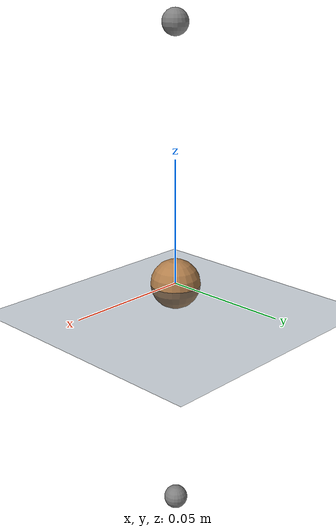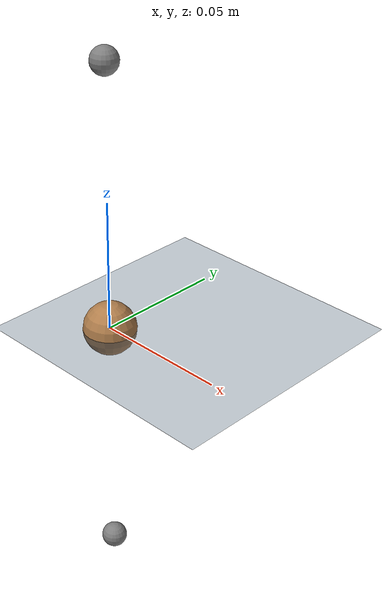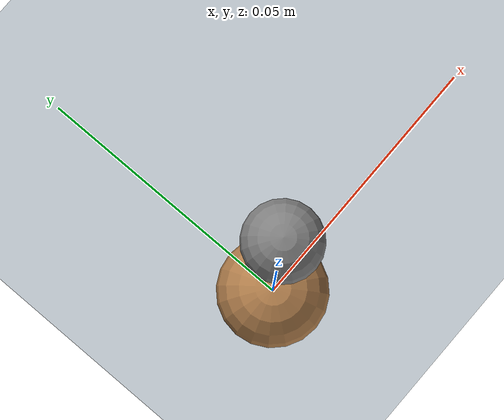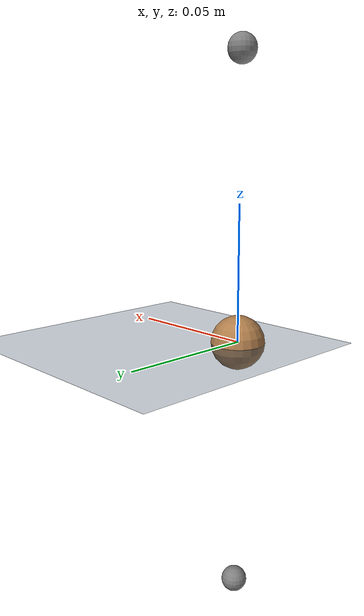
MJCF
<mujoco model="Particle1D">
  <custom>
    <numeric name="batch_configuration_length" data="3" />
    <numeric name="direct_num_parameters" data="6" />
    <numeric name="direct_model_parameters_id" data="1" />
  </custom>

  <visual>
    <headlight ambient=".4 .4 .4" diffuse=".8 .8 .8" specular="0.1 0.1 0.1"/>
    <map znear=".01"/>
    <quality shadowsize="2048"/>
  </visual>

  <default>
    <geom solimp="0 0.95 0.001"/>
  </default>

  <asset>
    <texture name="skybox" type="skybox" builtin="gradient" rgb1="0 0 0" rgb2="0 0 0"
             width="800" height="800" mark="random" markrgb="0 0 0"/>
  </asset>

  <asset>
      <texture name="grid" type="2d" builtin="checker" rgb1=".1 .2 .3" rgb2=".2 .3 .4" width="300" height="300" mark="edge" markrgb=".2 .3 .4"/>
      <material name="grid" texture="grid" texrepeat="1 1" texuniform="true" reflectance=".2"/>
      <material name="self" rgba=".7 .5 .3 1"/>
      <material name="self_default" rgba=".7 .5 .3 1"/>
      <material name="self_highlight" rgba="0 .5 .3 1"/>
      <material name="effector" rgba=".7 .4 .2 1"/>
      <material name="effector_default" rgba=".7 .4 .2 1"/>
      <material name="effector_highlight" rgba="0 .5 .3 1"/>
      <material name="decoration" rgba=".3 .5 .7 1"/>
      <material name="eye" rgba="0 .2 1 1"/>
      <material name="target" rgba="0 1 0 0.5"/>
      <material name="target_default" rgba=".6 .3 .3 1"/>
      <material name="target_highlight" rgba=".6 .3 .3 .4"/>
      <material name="site" rgba=".5 .5 .5 .3"/>
  </asset>

  <option timestep="0.01" />

  <worldbody>
    <light name="light" pos="0 0 1"/>
    <camera name="fixed" pos="0 0 .75" quat="1 0 0 0"/>
    <geom name="ground" type="plane" pos="0 0 0" size=".3 .3 .1" material="grid" />

    <body name="pointmass" pos="0 0 0">
      <joint name="root_z" type="slide" damping="0.0" pos="0 0 0" axis="0 0 1" />
      <geom name="pointmass" type="sphere" size=".01" material="self" mass="1.0"/>
      <site name="tip0" pos="0 0 0.1" />
      <site name="tip1" pos="0 0 -0.1" />
    </body>
  </worldbody>

  <actuator>
    <motor name="z_motor" joint="root_z"/>
  </actuator>

  <sensor>
    <framepos name="tip0" objtype="site" objname="tip0" />
    <framepos name="tip1" objtype="site" objname="tip1" />
  </sensor>

  <keyframe>
    <key name="home" qpos="0.25" qvel="0.1"/>
  </keyframe>
</mujoco>
